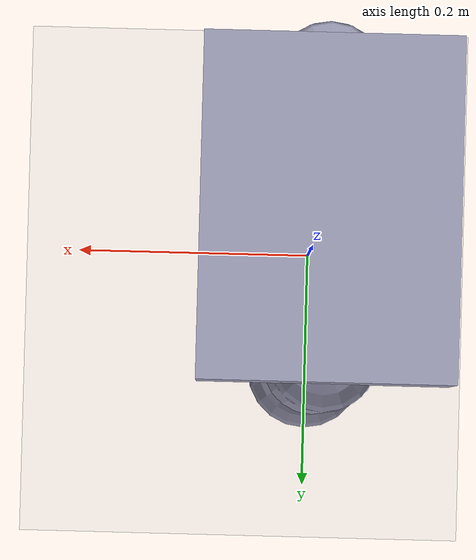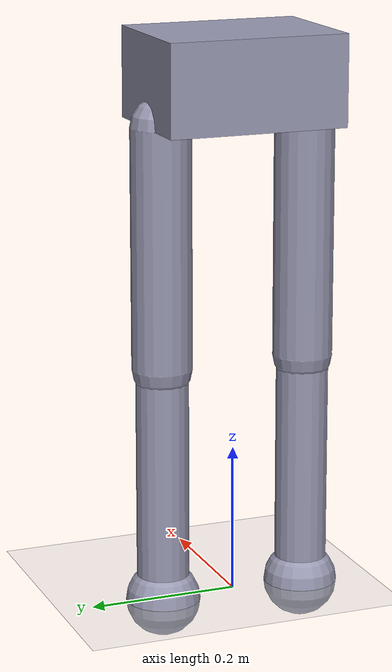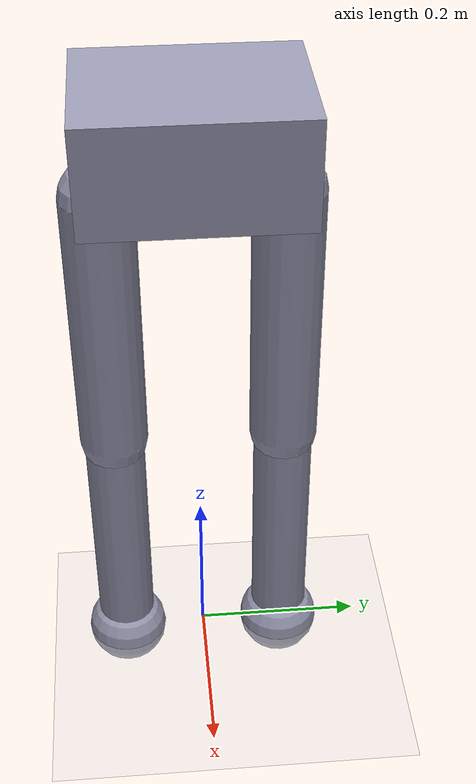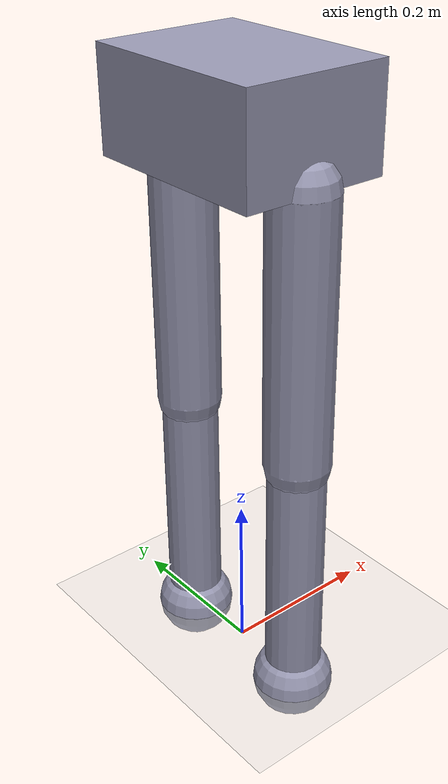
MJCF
<mujoco model="biped">
  <compiler angle="radian"/>
  <!-- timestep = 1/SIM_HZ (300 Hz). biped_env / main also set this in code so
       the inner (100 Hz) and outer (30 Hz) loops land on whole step counts. -->
  <option timestep="0.001" gravity="0 0 -9.81" integrator="implicitfast"/>

  <default>
    <joint damping="0.5" armature="0.02" limited="true"/>
    <geom friction="1.0 0.05 0.01" rgba="0.6 0.6 0.7 1"/>
    <motor gear="1" ctrlrange="-40 40"/>
  </default>

  <worldbody>
    <light pos="0 0 3" dir="0 0 -1"/>
    <geom name="floor" type="plane" size="0 0 0.1" rgba="0.85 0.85 0.85 1"/>

    <!-- Spawn height matches the crouched NOMINAL_POSE (knees bent, hips flexed)
         in biped_env.py, so the foot spheres start resting on the floor. -->
    <body name="pelvis" pos="0 0 0.6995">
      <freejoint name="root"/>
      <geom type="box" size="0.09 0.12 0.06" mass="6.0"/>

      <!-- ===================== LEFT LEG ===================== -->
      <body name="left_thigh" pos="0 0.10 -0.06">
        <joint name="left_hip_roll"  axis="1 0 0" range="-0.8 0.8"/>
        <joint name="left_hip_pitch" axis="0 1 0" range="-1.57 1.57"/>
        <geom type="capsule" fromto="0 0 0 0 0 -0.32" size="0.04" mass="3.0"/>

        <body name="left_shin" pos="0 0 -0.32">
          <joint name="left_knee" axis="0 1 0" range="-1.57 0.0"/>
          <geom type="capsule" fromto="0 0 0 0 0 -0.32" size="0.035" mass="2.0"/>

          <body name="left_foot" pos="0 0 -0.32">
            <geom name="left_foot" type="sphere" pos="0 0 0" size="0.05" mass="0.5"
                  friction="2.0 0.05 0.01"/>
          </body>
        </body>
      </body>

      <!-- ===================== RIGHT LEG ==================== -->
      <body name="right_thigh" pos="0 -0.10 -0.06">
        <joint name="right_hip_roll"  axis="1 0 0" range="-0.8 0.8"/>
        <joint name="right_hip_pitch" axis="0 1 0" range="-1.57 1.57"/>
        <geom type="capsule" fromto="0 0 0 0 0 -0.32" size="0.04" mass="3.0"/>

        <body name="right_shin" pos="0 0 -0.32">
          <joint name="right_knee" axis="0 1 0" range="-1.57 0.0"/>
          <geom type="capsule" fromto="0 0 0 0 0 -0.32" size="0.035" mass="2.0"/>

          <body name="right_foot" pos="0 0 -0.32">
            <geom name="right_foot" type="sphere" pos="0 0 0" size="0.05" mass="0.5"
                  friction="2.0 0.05 0.01"/>
          </body>
        </body>
      </body>
    </body>
  </worldbody>

  <!-- Actuator order defines the joint vector used everywhere (JOINT_NAMES):
       [L hip roll, L hip pitch, L knee,
        R hip roll, R hip pitch, R knee] -->
  <actuator>
    <motor name="left_hip_roll"   joint="left_hip_roll"/>
    <motor name="left_hip_pitch"  joint="left_hip_pitch"/>
    <motor name="left_knee"       joint="left_knee"/>
    <motor name="right_hip_roll"  joint="right_hip_roll"/>
    <motor name="right_hip_pitch" joint="right_hip_pitch"/>
    <motor name="right_knee"      joint="right_knee"/>
  </actuator>

  <keyframe>
    <key name="home" qpos="0 0 0.6995  1 0 0 0   0 0.4 -0.8   0 0.4 -0.8"/>
  </keyframe>
</mujoco>
